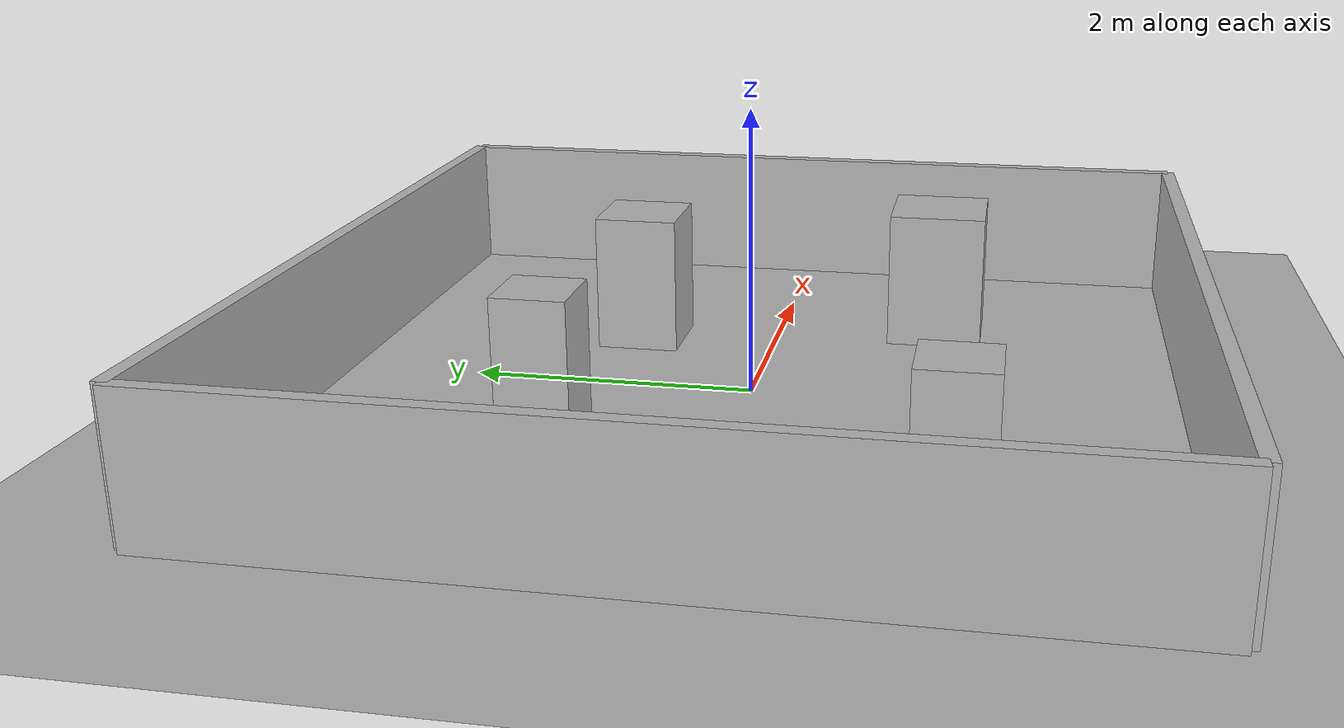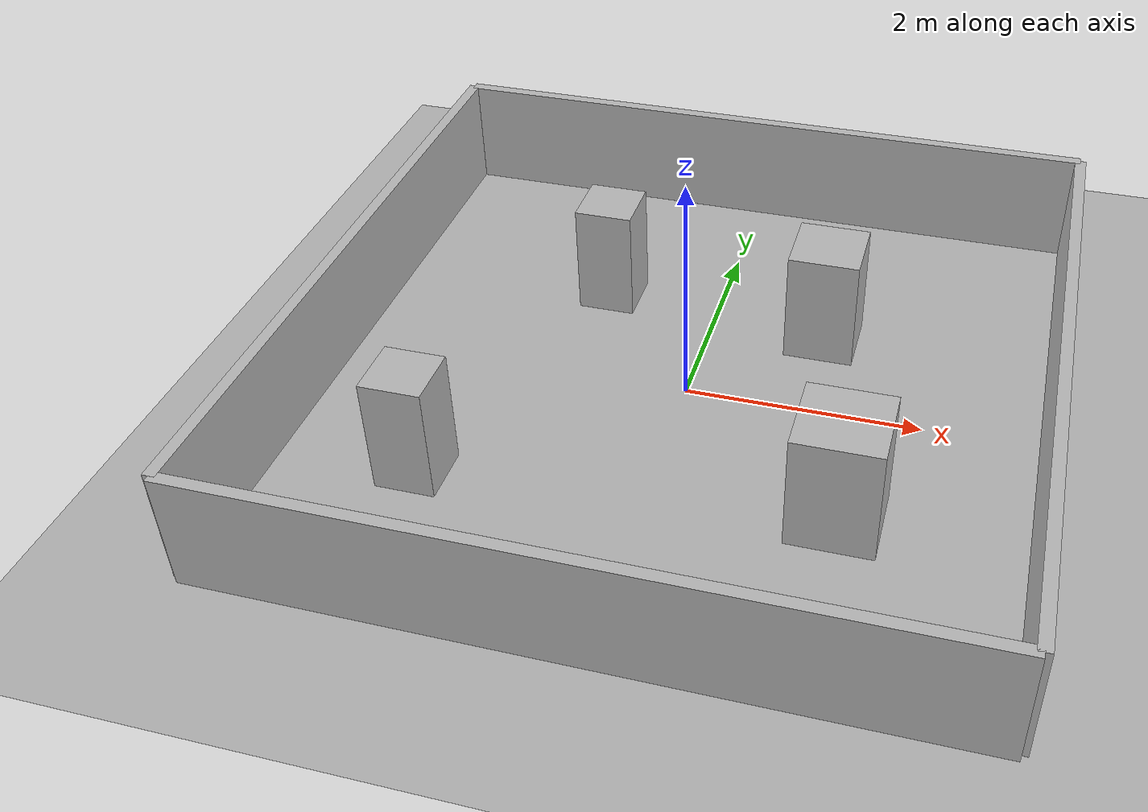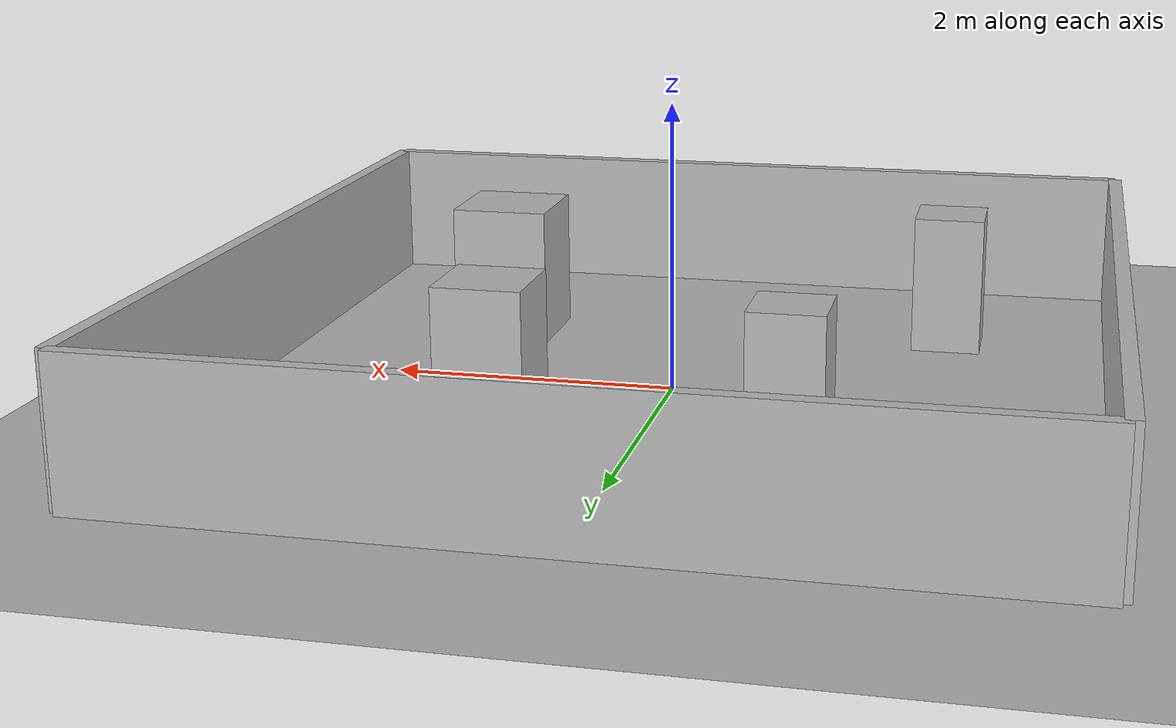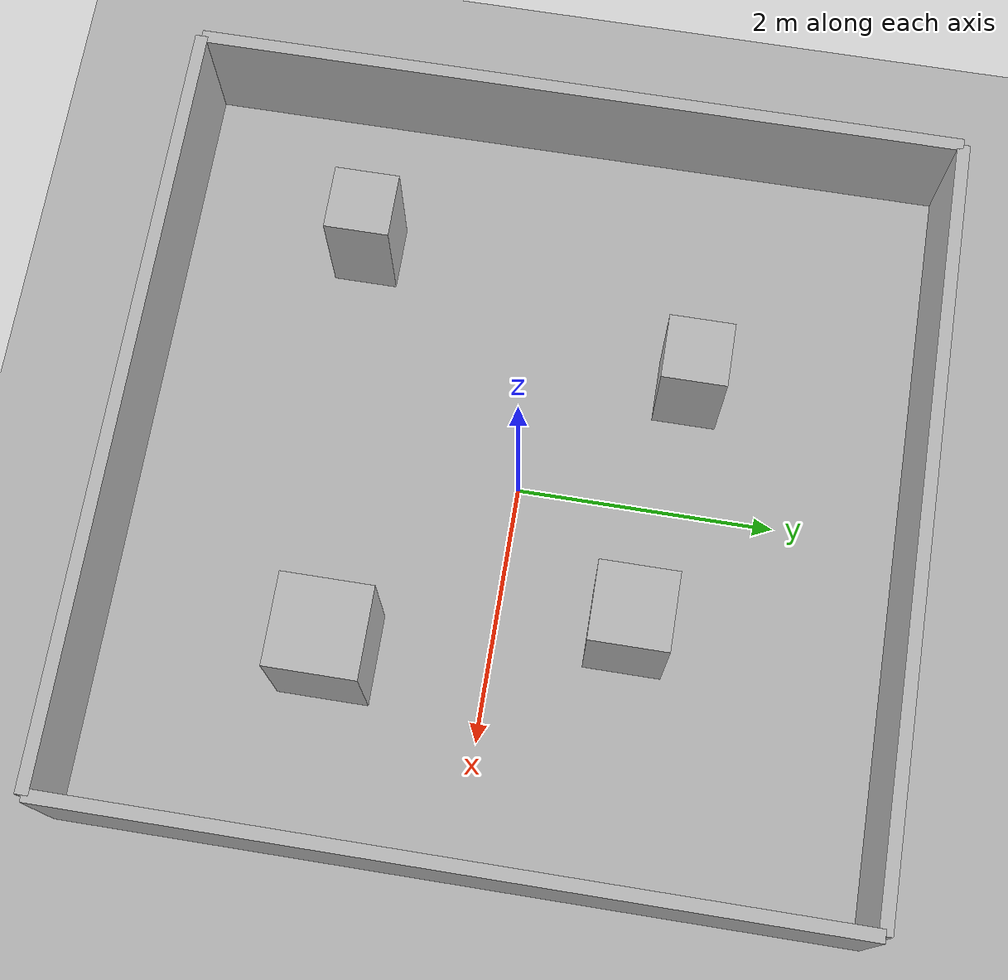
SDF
<?xml version="1.0"?>
<sdf version="1.10">
  <world name="ai_slam_world">
    <gravity>0 0 -9.8</gravity>

    <plugin filename="gz-sim-physics-system" name="gz::sim::systems::Physics"/>
    <plugin filename="gz-sim-user-commands-system" name="gz::sim::systems::UserCommands"/>
    <plugin filename="gz-sim-scene-broadcaster-system" name="gz::sim::systems::SceneBroadcaster"/>
    <plugin filename="gz-sim-sensors-system" name="gz::sim::systems::Sensors">
      <render_engine>ogre2</render_engine>
    </plugin>

      <!-- Sun light (replaces model://sun) -->
  <light name="sun" type="directional">
    <cast_shadows>true</cast_shadows>
    <pose>0 0 10 0 0 0</pose>
    <diffuse>0.8 0.8 0.8 1</diffuse>
    <specular>0.2 0.2 0.2 1</specular>
    <attenuation>
      <range>1000</range>
      <constant>0.9</constant>
      <linear>0.01</linear>
      <quadratic>0.001</quadratic>
    </attenuation>
    <direction>-0.5 0.1 -1</direction>
  </light>

  <!-- Ground plane (replaces model://ground_plane) -->
  <model name="ground_plane">
    <static>true</static>
    <link name="link">
      <collision name="collision">
        <geometry>
          <plane>
            <normal>0 0 1</normal>
            <size>100 100</size>
          </plane>
        </geometry>
        <surface>
          <friction>
            <ode>
              <mu>1.0</mu>
              <mu2>1.0</mu2>
            </ode>
          </friction>
        </surface>
      </collision>

      <visual name="visual">
        <geometry>
          <plane>
            <normal>0 0 1</normal>
            <size>100 100</size>
          </plane>
        </geometry>
        <material>
          <ambient>0.7 0.7 0.7 1</ambient>
          <diffuse>0.7 0.7 0.7 1</diffuse>
        </material>
      </visual>
    </link>
  </model>

    <model name="wall_north">
      <static>true</static>
      <pose>0 3.0 0.5 0 0 0</pose>
      <link name="link">
        <collision name="col">
          <geometry><box><size>6.0 0.1 1.0</size></box></geometry>
        </collision>
        <visual name="vis">
          <geometry><box><size>6.0 0.1 1.0</size></box></geometry>
        </visual>
      </link>
    </model>

    <model name="wall_south">
      <static>true</static>
      <pose>0 -3.0 0.5 0 0 0</pose>
      <link name="link">
        <collision name="col">
          <geometry><box><size>6.0 0.1 1.0</size></box></geometry>
        </collision>
        <visual name="vis">
          <geometry><box><size>6.0 0.1 1.0</size></box></geometry>
        </visual>
      </link>
    </model>

    <model name="wall_east">
      <static>true</static>
      <pose>3.0 0 0.5 0 0 0</pose>
      <link name="link">
        <collision name="col">
          <geometry><box><size>0.1 6.0 1.0</size></box></geometry>
        </collision>
        <visual name="vis">
          <geometry><box><size>0.1 6.0 1.0</size></box></geometry>
        </visual>
      </link>
    </model>

    <model name="wall_west">
      <static>true</static>
      <pose>-3.0 0 0.5 0 0 0</pose>
      <link name="link">
        <collision name="col">
          <geometry><box><size>0.1 6.0 1.0</size></box></geometry>
        </collision>
        <visual name="vis">
          <geometry><box><size>0.1 6.0 1.0</size></box></geometry>
        </visual>
      </link>
    </model>

    <model name="obs_1">
      <static>true</static>
      <pose>1.0 1.0 0.5 0 0 0</pose>
      <link name="link">
        <collision name="col"><geometry><box><size>0.6 0.6 1.0</size></box></geometry></collision>
        <visual name="vis"><geometry><box><size>0.6 0.6 1.0</size></box></geometry></visual>
      </link>
    </model>

    <model name="obs_2">
      <static>true</static>
      <pose>-1.0 1.2 0.5 0 0 0</pose>
      <link name="link">
        <collision name="col"><geometry><box><size>0.5 0.5 1.0</size></box></geometry></collision>
        <visual name="vis"><geometry><box><size>0.5 0.5 1.0</size></box></geometry></visual>
      </link>
    </model>

    <model name="obs_3">
      <static>true</static>
      <pose>1.5 -1.2 0.5 0 0 0</pose>
      <link name="link">
        <collision name="col"><geometry><box><size>0.7 0.7 1.0</size></box></geometry></collision>
        <visual name="vis"><geometry><box><size>0.7 0.7 1.0</size></box></geometry></visual>
      </link>
    </model>

    <model name="obs_4">
      <static>true</static>
      <pose>-1.8 -1.5 0.5 0 0 0</pose>
      <link name="link">
        <collision name="col"><geometry><box><size>0.5 0.5 1.0</size></box></geometry></collision>
        <visual name="vis"><geometry><box><size>0.5 0.5 1.0</size></box></geometry></visual>
      </link>
    </model>
  </world>
</sdf>
